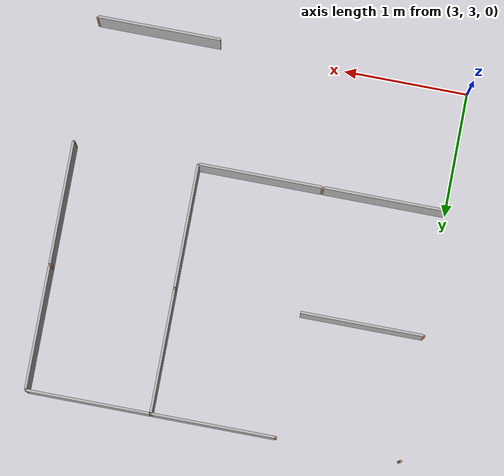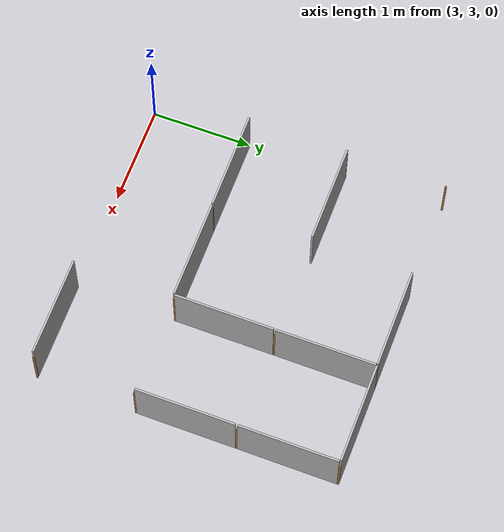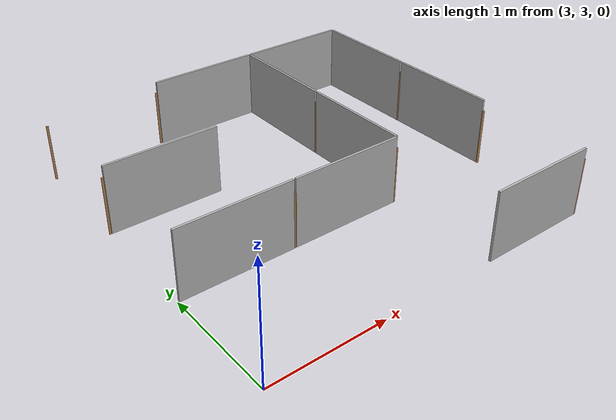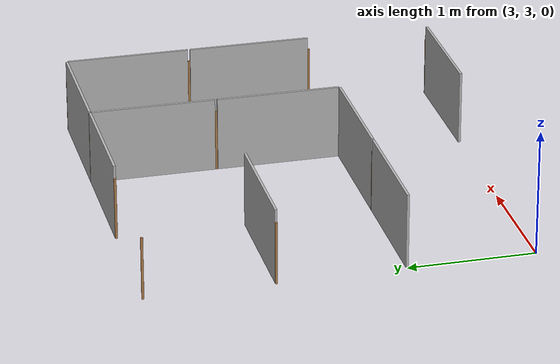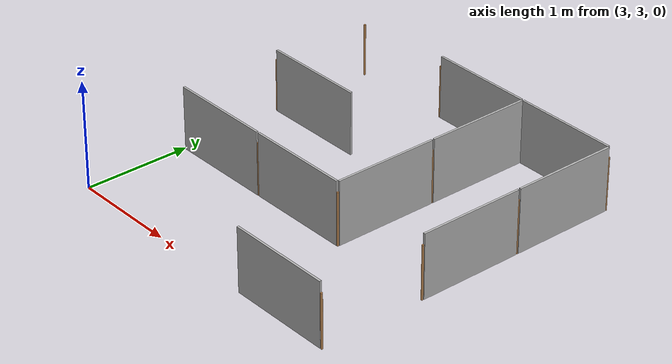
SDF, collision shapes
<sdf version="1.7">
 <model name="maze_3_6x6">
  <link name="plywood_panel_4_4_c::main">
   <pose>4 4 0 0 0 -1.5708</pose>
   <visual name="visual">
    <pose>0.01 -0.01 0 3.14159 -1.57059 3.14159</pose>
    <geometry><mesh><scale>1 1 1</scale><uri>model://plywood_panel/meshes/plywood.dae</uri></mesh></geometry>
    <material><shader type="pixel"/></material>
   </visual>
   <collision name="collision">
    <pose>0 -0.5 0.3 -1.571 -0 -1.571</pose>
    <geometry><box><size>0.98 0.6 0.02</size></box></geometry>
    <surface>
     <friction>
      <ode><mu>1</mu><mu2>1</mu2><fdir1>0 0 0</fdir1><slip1>0</slip1><slip2>0</slip2></ode>
      <torsional>
       <coefficient>1</coefficient>
       <patch_radius>0</patch_radius>
       <surface_radius>0</surface_radius>
       <use_patch_radius>1</use_patch_radius>
       <ode><slip>0</slip></ode>
      </torsional>
     </friction>
     <bounce><restitution_coefficient>0</restitution_coefficient><threshold>1e+06</threshold></bounce>
     <contact>
      <collide_without_contact>0</collide_without_contact>
      <collide_without_contact_bitmask>1</collide_without_contact_bitmask>
      <collide_bitmask>1</collide_bitmask>
      <ode>
       <soft_cfm>0</soft_cfm>
       <soft_erp>0.2</soft_erp>
       <kp>1e+13</kp>
       <kd>1</kd>
       <max_vel>0.01</max_vel>
       <min_depth>0</min_depth>
      </ode>
      <bullet>
       <split_impulse>1</split_impulse>
       <split_impulse_penetration_threshold>-0.01</split_impulse_penetration_threshold>
       <soft_cfm>0</soft_cfm>
       <soft_erp>0.2</soft_erp>
       <kp>1e+13</kp>
       <kd>1</kd>
      </bullet>
     </contact>
    </surface>
   </collision>
  </link>
  <link name="plywood_panel_4_5_c::main">
   <pose>4 5 0 0 0 -1.5708</pose>
   <visual name="visual">
    <pose>0.01 -0.01 0 3.14159 -1.57059 3.14159</pose>
    <geometry><mesh><scale>1 1 1</scale><uri>model://plywood_panel/meshes/plywood.dae</uri></mesh></geometry>
    <material><shader type="pixel"/></material>
   </visual>
   <collision name="collision">
    <pose>0 -0.5 0.3 -1.571 -0 -1.571</pose>
    <geometry><box><size>0.98 0.6 0.02</size></box></geometry>
    <surface>
     <friction>
      <ode><mu>1</mu><mu2>1</mu2><fdir1>0 0 0</fdir1><slip1>0</slip1><slip2>0</slip2></ode>
      <torsional>
       <coefficient>1</coefficient>
       <patch_radius>0</patch_radius>
       <surface_radius>0</surface_radius>
       <use_patch_radius>1</use_patch_radius>
       <ode><slip>0</slip></ode>
      </torsional>
     </friction>
     <bounce><restitution_coefficient>0</restitution_coefficient><threshold>1e+06</threshold></bounce>
     <contact>
      <collide_without_contact>0</collide_without_contact>
      <collide_without_contact_bitmask>1</collide_without_contact_bitmask>
      <collide_bitmask>1</collide_bitmask>
      <ode>
       <soft_cfm>0</soft_cfm>
       <soft_erp>0.2</soft_erp>
       <kp>1e+13</kp>
       <kd>1</kd>
       <max_vel>0.01</max_vel>
       <min_depth>0</min_depth>
      </ode>
      <bullet>
       <split_impulse>1</split_impulse>
       <split_impulse_penetration_threshold>-0.01</split_impulse_penetration_threshold>
       <soft_cfm>0</soft_cfm>
       <soft_erp>0.2</soft_erp>
       <kp>1e+13</kp>
       <kd>1</kd>
      </bullet>
     </contact>
    </surface>
   </collision>
  </link>
  <link name="plywood_panel_4_6_b::main">
   <pose>4 6 0 0 -0 1.571</pose>
   <visual name="visual">
    <pose>0.01 -0.01 0 3.14159 -1.57059 3.14159</pose>
    <geometry><mesh><scale>1 1 1</scale><uri>model://plywood_panel/meshes/plywood.dae</uri></mesh></geometry>
    <material><shader type="pixel"/></material>
   </visual>
   <collision name="collision">
    <pose>0 -0.5 0.3 -1.571 -0 -1.571</pose>
    <geometry><box><size>0.98 0.6 0.02</size></box></geometry>
    <surface>
     <friction>
      <ode><mu>1</mu><mu2>1</mu2><fdir1>0 0 0</fdir1><slip1>0</slip1><slip2>0</slip2></ode>
      <torsional>
       <coefficient>1</coefficient>
       <patch_radius>0</patch_radius>
       <surface_radius>0</surface_radius>
       <use_patch_radius>1</use_patch_radius>
       <ode><slip>0</slip></ode>
      </torsional>
     </friction>
     <bounce><restitution_coefficient>0</restitution_coefficient><threshold>1e+06</threshold></bounce>
     <contact>
      <collide_without_contact>0</collide_without_contact>
      <collide_without_contact_bitmask>1</collide_without_contact_bitmask>
      <collide_bitmask>1</collide_bitmask>
      <ode>
       <soft_cfm>0</soft_cfm>
       <soft_erp>0.2</soft_erp>
       <kp>1e+13</kp>
       <kd>1</kd>
       <max_vel>0.01</max_vel>
       <min_depth>0</min_depth>
      </ode>
      <bullet>
       <split_impulse>1</split_impulse>
       <split_impulse_penetration_threshold>-0.01</split_impulse_penetration_threshold>
       <soft_cfm>0</soft_cfm>
       <soft_erp>0.2</soft_erp>
       <kp>1e+13</kp>
       <kd>1</kd>
      </bullet>
     </contact>
    </surface>
   </collision>
  </link>
  <link name="plywood_panel_5_4_c::main">
   <pose>5 4 0 0 0 -1.5708</pose>
   <visual name="visual">
    <pose>0.01 -0.01 0 3.14159 -1.57059 3.14159</pose>
    <geometry><mesh><scale>1 1 1</scale><uri>model://plywood_panel/meshes/plywood.dae</uri></mesh></geometry>
    <material><shader type="pixel"/></material>
   </visual>
   <collision name="collision">
    <pose>0 -0.5 0.3 -1.571 -0 -1.571</pose>
    <geometry><box><size>0.98 0.6 0.02</size></box></geometry>
    <surface>
     <friction>
      <ode><mu>1</mu><mu2>1</mu2><fdir1>0 0 0</fdir1><slip1>0</slip1><slip2>0</slip2></ode>
      <torsional>
       <coefficient>1</coefficient>
       <patch_radius>0</patch_radius>
       <surface_radius>0</surface_radius>
       <use_patch_radius>1</use_patch_radius>
       <ode><slip>0</slip></ode>
      </torsional>
     </friction>
     <bounce><restitution_coefficient>0</restitution_coefficient><threshold>1e+06</threshold></bounce>
     <contact>
      <collide_without_contact>0</collide_without_contact>
      <collide_without_contact_bitmask>1</collide_without_contact_bitmask>
      <collide_bitmask>1</collide_bitmask>
      <ode>
       <soft_cfm>0</soft_cfm>
       <soft_erp>0.2</soft_erp>
       <kp>1e+13</kp>
       <kd>1</kd>
       <max_vel>0.01</max_vel>
       <min_depth>0</min_depth>
      </ode>
      <bullet>
       <split_impulse>1</split_impulse>
       <split_impulse_penetration_threshold>-0.01</split_impulse_penetration_threshold>
       <soft_cfm>0</soft_cfm>
       <soft_erp>0.2</soft_erp>
       <kp>1e+13</kp>
       <kd>1</kd>
      </bullet>
     </contact>
    </surface>
   </collision>
  </link>
  <link name="plywood_panel_5_5_a::main">
   <pose>5 5 0 0 -0 0</pose>
   <visual name="visual">
    <pose>0.01 -0.01 0 3.14159 -1.57059 3.14159</pose>
    <geometry><mesh><scale>1 1 1</scale><uri>model://plywood_panel/meshes/plywood.dae</uri></mesh></geometry>
    <material><shader type="pixel"/></material>
   </visual>
   <collision name="collision">
    <pose>0 -0.5 0.3 -1.571 -0 -1.571</pose>
    <geometry><box><size>0.98 0.6 0.02</size></box></geometry>
    <surface>
     <friction>
      <ode><mu>1</mu><mu2>1</mu2><fdir1>0 0 0</fdir1><slip1>0</slip1><slip2>0</slip2></ode>
      <torsional>
       <coefficient>1</coefficient>
       <patch_radius>0</patch_radius>
       <surface_radius>0</surface_radius>
       <use_patch_radius>1</use_patch_radius>
       <ode><slip>0</slip></ode>
      </torsional>
     </friction>
     <bounce><restitution_coefficient>0</restitution_coefficient><threshold>1e+06</threshold></bounce>
     <contact>
      <collide_without_contact>0</collide_without_contact>
      <collide_without_contact_bitmask>1</collide_without_contact_bitmask>
      <collide_bitmask>1</collide_bitmask>
      <ode>
       <soft_cfm>0</soft_cfm>
       <soft_erp>0.2</soft_erp>
       <kp>1e+13</kp>
       <kd>1</kd>
       <max_vel>0.01</max_vel>
       <min_depth>0</min_depth>
      </ode>
      <bullet>
       <split_impulse>1</split_impulse>
       <split_impulse_penetration_threshold>-0.01</split_impulse_penetration_threshold>
       <soft_cfm>0</soft_cfm>
       <soft_erp>0.2</soft_erp>
       <kp>1e+13</kp>
       <kd>1</kd>
      </bullet>
     </contact>
    </surface>
   </collision>
  </link>
  <link name="plywood_panel_5_6_a::main">
   <pose>5 6 0 0 -0 0</pose>
   <visual name="visual">
    <pose>0.01 -0.01 0 3.14159 -1.57059 3.14159</pose>
    <geometry><mesh><scale>1 1 1</scale><uri>model://plywood_panel/meshes/plywood.dae</uri></mesh></geometry>
    <material><shader type="pixel"/></material>
   </visual>
   <collision name="collision">
    <pose>0 -0.5 0.3 -1.571 -0 -1.571</pose>
    <geometry><box><size>0.98 0.6 0.02</size></box></geometry>
    <surface>
     <friction>
      <ode><mu>1</mu><mu2>1</mu2><fdir1>0 0 0</fdir1><slip1>0</slip1><slip2>0</slip2></ode>
      <torsional>
       <coefficient>1</coefficient>
       <patch_radius>0</patch_radius>
       <surface_radius>0</surface_radius>
       <use_patch_radius>1</use_patch_radius>
       <ode><slip>0</slip></ode>
      </torsional>
     </friction>
     <bounce><restitution_coefficient>0</restitution_coefficient><threshold>1e+06</threshold></bounce>
     <contact>
      <collide_without_contact>0</collide_without_contact>
      <collide_without_contact_bitmask>1</collide_without_contact_bitmask>
      <collide_bitmask>1</collide_bitmask>
      <ode>
       <soft_cfm>0</soft_cfm>
       <soft_erp>0.2</soft_erp>
       <kp>1e+13</kp>
       <kd>1</kd>
       <max_vel>0.01</max_vel>
       <min_depth>0</min_depth>
      </ode>
      <bullet>
       <split_impulse>1</split_impulse>
       <split_impulse_penetration_threshold>-0.01</split_impulse_penetration_threshold>
       <soft_cfm>0</soft_cfm>
       <soft_erp>0.2</soft_erp>
       <kp>1e+13</kp>
       <kd>1</kd>
      </bullet>
     </contact>
    </surface>
   </collision>
  </link>
  <link name="plywood_panel_5_6_b::main">
   <pose>5 6 0 0 -0 1.571</pose>
   <visual name="visual">
    <pose>0.01 -0.01 0 3.14159 -1.57059 3.14159</pose>
    <geometry><mesh><scale>1 1 1</scale><uri>model://plywood_panel/meshes/plywood.dae</uri></mesh></geometry>
    <material><shader type="pixel"/></material>
   </visual>
   <collision name="collision">
    <pose>0 -0.5 0.3 -1.571 -0 -1.571</pose>
    <geometry><box><size>0.98 0.6 0.02</size></box></geometry>
    <surface>
     <friction>
      <ode><mu>1</mu><mu2>1</mu2><fdir1>0 0 0</fdir1><slip1>0</slip1><slip2>0</slip2></ode>
      <torsional>
       <coefficient>1</coefficient>
       <patch_radius>0</patch_radius>
       <surface_radius>0</surface_radius>
       <use_patch_radius>1</use_patch_radius>
       <ode><slip>0</slip></ode>
      </torsional>
     </friction>
     <bounce><restitution_coefficient>0</restitution_coefficient><threshold>1e+06</threshold></bounce>
     <contact>
      <collide_without_contact>0</collide_without_contact>
      <collide_without_contact_bitmask>1</collide_without_contact_bitmask>
      <collide_bitmask>1</collide_bitmask>
      <ode>
       <soft_cfm>0</soft_cfm>
       <soft_erp>0.2</soft_erp>
       <kp>1e+13</kp>
       <kd>1</kd>
       <max_vel>0.01</max_vel>
       <min_depth>0</min_depth>
      </ode>
      <bullet>
       <split_impulse>1</split_impulse>
       <split_impulse_penetration_threshold>-0.01</split_impulse_penetration_threshold>
       <soft_cfm>0</soft_cfm>
       <soft_erp>0.2</soft_erp>
       <kp>1e+13</kp>
       <kd>1</kd>
      </bullet>
     </contact>
    </surface>
   </collision>
  </link>
  <link name="plywood_panel_6_3_c::main">
   <pose>6 3 0 0 0 -1.5708</pose>
   <visual name="visual">
    <pose>0.01 -0.01 0 3.14159 -1.57059 3.14159</pose>
    <geometry><mesh><scale>1 1 1</scale><uri>model://plywood_panel/meshes/plywood.dae</uri></mesh></geometry>
    <material><shader type="pixel"/></material>
   </visual>
   <collision name="collision">
    <pose>0 -0.5 0.3 -1.571 -0 -1.571</pose>
    <geometry><box><size>0.98 0.6 0.02</size></box></geometry>
    <surface>
     <friction>
      <ode><mu>1</mu><mu2>1</mu2><fdir1>0 0 0</fdir1><slip1>0</slip1><slip2>0</slip2></ode>
      <torsional>
       <coefficient>1</coefficient>
       <patch_radius>0</patch_radius>
       <surface_radius>0</surface_radius>
       <use_patch_radius>1</use_patch_radius>
       <ode><slip>0</slip></ode>
      </torsional>
     </friction>
     <bounce><restitution_coefficient>0</restitution_coefficient><threshold>1e+06</threshold></bounce>
     <contact>
      <collide_without_contact>0</collide_without_contact>
      <collide_without_contact_bitmask>1</collide_without_contact_bitmask>
      <collide_bitmask>1</collide_bitmask>
      <ode>
       <soft_cfm>0</soft_cfm>
       <soft_erp>0.2</soft_erp>
       <kp>1e+13</kp>
       <kd>1</kd>
       <max_vel>0.01</max_vel>
       <min_depth>0</min_depth>
      </ode>
      <bullet>
       <split_impulse>1</split_impulse>
       <split_impulse_penetration_threshold>-0.01</split_impulse_penetration_threshold>
       <soft_cfm>0</soft_cfm>
       <soft_erp>0.2</soft_erp>
       <kp>1e+13</kp>
       <kd>1</kd>
      </bullet>
     </contact>
    </surface>
   </collision>
  </link>
  <link name="plywood_panel_6_4_a::main">
   <pose>6 4 0 0 -0 3.14159</pose>
   <visual name="visual">
    <pose>0.01 -0.01 0 3.14159 -1.57059 3.14159</pose>
    <geometry><mesh><scale>1 1 1</scale><uri>model://plywood_panel/meshes/plywood.dae</uri></mesh></geometry>
    <material><shader type="pixel"/></material>
   </visual>
   <collision name="collision">
    <pose>0 -0.5 0.3 -1.571 -0 -1.571</pose>
    <geometry><box><size>0.98 0.6 0.02</size></box></geometry>
    <surface>
     <friction>
      <ode><mu>1</mu><mu2>1</mu2><fdir1>0 0 0</fdir1><slip1>0</slip1><slip2>0</slip2></ode>
      <torsional>
       <coefficient>1</coefficient>
       <patch_radius>0</patch_radius>
       <surface_radius>0</surface_radius>
       <use_patch_radius>1</use_patch_radius>
       <ode><slip>0</slip></ode>
      </torsional>
     </friction>
     <bounce><restitution_coefficient>0</restitution_coefficient><threshold>1e+06</threshold></bounce>
     <contact>
      <collide_without_contact>0</collide_without_contact>
      <collide_without_contact_bitmask>1</collide_without_contact_bitmask>
      <collide_bitmask>1</collide_bitmask>
      <ode>
       <soft_cfm>0</soft_cfm>
       <soft_erp>0.2</soft_erp>
       <kp>1e+13</kp>
       <kd>1</kd>
       <max_vel>0.01</max_vel>
       <min_depth>0</min_depth>
      </ode>
      <bullet>
       <split_impulse>1</split_impulse>
       <split_impulse_penetration_threshold>-0.01</split_impulse_penetration_threshold>
       <soft_cfm>0</soft_cfm>
       <soft_erp>0.2</soft_erp>
       <kp>1e+13</kp>
       <kd>1</kd>
      </bullet>
     </contact>
    </surface>
   </collision>
  </link>
  <link name="plywood_panel_6_5_a::main">
   <pose>6 5 0 0 -0 3.14159</pose>
   <visual name="visual">
    <pose>0.01 -0.01 0 3.14159 -1.57059 3.14159</pose>
    <geometry><mesh><scale>1 1 1</scale><uri>model://plywood_panel/meshes/plywood.dae</uri></mesh></geometry>
    <material><shader type="pixel"/></material>
   </visual>
   <collision name="collision">
    <pose>0 -0.5 0.3 -1.571 -0 -1.571</pose>
    <geometry><box><size>0.98 0.6 0.02</size></box></geometry>
    <surface>
     <friction>
      <ode><mu>1</mu><mu2>1</mu2><fdir1>0 0 0</fdir1><slip1>0</slip1><slip2>0</slip2></ode>
      <torsional>
       <coefficient>1</coefficient>
       <patch_radius>0</patch_radius>
       <surface_radius>0</surface_radius>
       <use_patch_radius>1</use_patch_radius>
       <ode><slip>0</slip></ode>
      </torsional>
     </friction>
     <bounce><restitution_coefficient>0</restitution_coefficient><threshold>1e+06</threshold></bounce>
     <contact>
      <collide_without_contact>0</collide_without_contact>
      <collide_without_contact_bitmask>1</collide_without_contact_bitmask>
      <collide_bitmask>1</collide_bitmask>
      <ode>
       <soft_cfm>0</soft_cfm>
       <soft_erp>0.2</soft_erp>
       <kp>1e+13</kp>
       <kd>1</kd>
       <max_vel>0.01</max_vel>
       <min_depth>0</min_depth>
      </ode>
      <bullet>
       <split_impulse>1</split_impulse>
       <split_impulse_penetration_threshold>-0.01</split_impulse_penetration_threshold>
       <soft_cfm>0</soft_cfm>
       <soft_erp>0.2</soft_erp>
       <kp>1e+13</kp>
       <kd>1</kd>
      </bullet>
     </contact>
    </surface>
   </collision>
  </link>
  <link name="wooden_joint_3_5::link_0">
   <pose>3 5 0.25 0 -0 0</pose>
   <inertial>
    <mass>0.00215981</mass>
    <inertia>
     <ixx>0.00018028</ixx>
     <ixy>0</ixy>
     <ixz>0</ixz>
     <iyy>0.00018028</iyy>
     <iyz>0</iyz>
     <izz>5.8e-07</izz>
    </inertia>
   </inertial>
   <visual name="visual">
    <geometry><cylinder><radius>0.01</radius><length>0.5</length></cylinder></geometry>
    <material>
     <lighting>1</lighting>
     <script><uri>file://media/materials/scripts/gazebo.material</uri><name>Gazebo/Wood</name></script>
     <shader type="pixel"><normal_map>__default__</normal_map></shader>
     <ambient>0.3 0.3 0.3 1</ambient>
     <diffuse>0.7 0.7 0.7 1</diffuse>
     <specular>0.01 0.01 0.01 1</specular>
     <emissive>0 0 0 1</emissive>
    </material>
   </visual>
   <collision name="collision">
    <geometry><cylinder><radius>0.01</radius><length>0.5</length></cylinder></geometry>
    <surface>
     <friction>
      <ode><mu>1</mu><mu2>1</mu2><fdir1>0 0 0</fdir1><slip1>0</slip1><slip2>0</slip2></ode>
      <torsional>
       <coefficient>1</coefficient>
       <patch_radius>0</patch_radius>
       <surface_radius>0</surface_radius>
       <use_patch_radius>1</use_patch_radius>
       <ode><slip>0</slip></ode>
      </torsional>
     </friction>
     <bounce><restitution_coefficient>0</restitution_coefficient><threshold>1e+06</threshold></bounce>
     <contact>
      <collide_without_contact>0</collide_without_contact>
      <collide_without_contact_bitmask>1</collide_without_contact_bitmask>
      <collide_bitmask>1</collide_bitmask>
      <ode>
       <soft_cfm>0</soft_cfm>
       <soft_erp>0.2</soft_erp>
       <kp>1e+13</kp>
       <kd>1</kd>
       <max_vel>0.01</max_vel>
       <min_depth>0</min_depth>
      </ode>
      <bullet>
       <split_impulse>1</split_impulse>
       <split_impulse_penetration_threshold>-0.01</split_impulse_penetration_threshold>
       <soft_cfm>0</soft_cfm>
       <soft_erp>0.2</soft_erp>
       <kp>1e+13</kp>
       <kd>1</kd>
      </bullet>
     </contact>
    </surface>
   </collision>
  </link>
  <link name="wooden_joint_3_6_b::link_0">
   <pose>3 6 0.25 0 -0 0</pose>
   <inertial>
    <mass>0.00215981</mass>
    <inertia>
     <ixx>0.00018028</ixx>
     <ixy>0</ixy>
     <ixz>0</ixz>
     <iyy>0.00018028</iyy>
     <iyz>0</iyz>
     <izz>5.8e-07</izz>
    </inertia>
   </inertial>
   <visual name="visual">
    <geometry><cylinder><radius>0.01</radius><length>0.5</length></cylinder></geometry>
    <material>
     <lighting>1</lighting>
     <script><uri>file://media/materials/scripts/gazebo.material</uri><name>Gazebo/Wood</name></script>
     <shader type="pixel"><normal_map>__default__</normal_map></shader>
     <ambient>0.3 0.3 0.3 1</ambient>
     <diffuse>0.7 0.7 0.7 1</diffuse>
     <specular>0.01 0.01 0.01 1</specular>
     <emissive>0 0 0 1</emissive>
    </material>
   </visual>
   <collision name="collision">
    <geometry><cylinder><radius>0.01</radius><length>0.5</length></cylinder></geometry>
    <surface>
     <friction>
      <ode><mu>1</mu><mu2>1</mu2><fdir1>0 0 0</fdir1><slip1>0</slip1><slip2>0</slip2></ode>
      <torsional>
       <coefficient>1</coefficient>
       <patch_radius>0</patch_radius>
       <surface_radius>0</surface_radius>
       <use_patch_radius>1</use_patch_radius>
       <ode><slip>0</slip></ode>
      </torsional>
     </friction>
     <bounce><restitution_coefficient>0</restitution_coefficient><threshold>1e+06</threshold></bounce>
     <contact>
      <collide_without_contact>0</collide_without_contact>
      <collide_without_contact_bitmask>1</collide_without_contact_bitmask>
      <collide_bitmask>1</collide_bitmask>
      <ode>
       <soft_cfm>0</soft_cfm>
       <soft_erp>0.2</soft_erp>
       <kp>1e+13</kp>
       <kd>1</kd>
       <max_vel>0.01</max_vel>
       <min_depth>0</min_depth>
      </ode>
      <bullet>
       <split_impulse>1</split_impulse>
       <split_impulse_penetration_threshold>-0.01</split_impulse_penetration_threshold>
       <soft_cfm>0</soft_cfm>
       <soft_erp>0.2</soft_erp>
       <kp>1e+13</kp>
       <kd>1</kd>
      </bullet>
     </contact>
    </surface>
   </collision>
  </link>
  <link name="wooden_joint_4_4::link_0">
   <pose>4 4 0.25 0 -0 0</pose>
   <inertial>
    <mass>0.00215981</mass>
    <inertia>
     <ixx>0.00018028</ixx>
     <ixy>0</ixy>
     <ixz>0</ixz>
     <iyy>0.00018028</iyy>
     <iyz>0</iyz>
     <izz>5.8e-07</izz>
    </inertia>
   </inertial>
   <visual name="visual">
    <geometry><cylinder><radius>0.01</radius><length>0.5</length></cylinder></geometry>
    <material>
     <lighting>1</lighting>
     <script><uri>file://media/materials/scripts/gazebo.material</uri><name>Gazebo/Wood</name></script>
     <shader type="pixel"><normal_map>__default__</normal_map></shader>
     <ambient>0.3 0.3 0.3 1</ambient>
     <diffuse>0.7 0.7 0.7 1</diffuse>
     <specular>0.01 0.01 0.01 1</specular>
     <emissive>0 0 0 1</emissive>
    </material>
   </visual>
   <collision name="collision">
    <geometry><cylinder><radius>0.01</radius><length>0.5</length></cylinder></geometry>
    <surface>
     <friction>
      <ode><mu>1</mu><mu2>1</mu2><fdir1>0 0 0</fdir1><slip1>0</slip1><slip2>0</slip2></ode>
      <torsional>
       <coefficient>1</coefficient>
       <patch_radius>0</patch_radius>
       <surface_radius>0</surface_radius>
       <use_patch_radius>1</use_patch_radius>
       <ode><slip>0</slip></ode>
      </torsional>
     </friction>
     <bounce><restitution_coefficient>0</restitution_coefficient><threshold>1e+06</threshold></bounce>
     <contact>
      <collide_without_contact>0</collide_without_contact>
      <collide_without_contact_bitmask>1</collide_without_contact_bitmask>
      <collide_bitmask>1</collide_bitmask>
      <ode>
       <soft_cfm>0</soft_cfm>
       <soft_erp>0.2</soft_erp>
       <kp>1e+13</kp>
       <kd>1</kd>
       <max_vel>0.01</max_vel>
       <min_depth>0</min_depth>
      </ode>
      <bullet>
       <split_impulse>1</split_impulse>
       <split_impulse_penetration_threshold>-0.01</split_impulse_penetration_threshold>
       <soft_cfm>0</soft_cfm>
       <soft_erp>0.2</soft_erp>
       <kp>1e+13</kp>
       <kd>1</kd>
      </bullet>
     </contact>
    </surface>
   </collision>
  </link>
  <link name="wooden_joint_4_6_b::link_0">
   <pose>4 6 0.25 0 -0 0</pose>
   <inertial>
    <mass>0.00215981</mass>
    <inertia>
     <ixx>0.00018028</ixx>
     <ixy>0</ixy>
     <ixz>0</ixz>
     <iyy>0.00018028</iyy>
     <iyz>0</iyz>
     <izz>5.8e-07</izz>
    </inertia>
   </inertial>
   <visual name="visual">
    <geometry><cylinder><radius>0.01</radius><length>0.5</length></cylinder></geometry>
    <material>
     <lighting>1</lighting>
     <script><uri>file://media/materials/scripts/gazebo.material</uri><name>Gazebo/Wood</name></script>
     <shader type="pixel"><normal_map>__default__</normal_map></shader>
     <ambient>0.3 0.3 0.3 1</ambient>
     <diffuse>0.7 0.7 0.7 1</diffuse>
     <specular>0.01 0.01 0.01 1</specular>
     <emissive>0 0 0 1</emissive>
    </material>
   </visual>
   <collision name="collision">
    <geometry><cylinder><radius>0.01</radius><length>0.5</length></cylinder></geometry>
    <surface>
     <friction>
      <ode><mu>1</mu><mu2>1</mu2><fdir1>0 0 0</fdir1><slip1>0</slip1><slip2>0</slip2></ode>
      <torsional>
       <coefficient>1</coefficient>
       <patch_radius>0</patch_radius>
       <surface_radius>0</surface_radius>
       <use_patch_radius>1</use_patch_radius>
       <ode><slip>0</slip></ode>
      </torsional>
     </friction>
     <bounce><restitution_coefficient>0</restitution_coefficient><threshold>1e+06</threshold></bounce>
     <contact>
      <collide_without_contact>0</collide_without_contact>
      <collide_without_contact_bitmask>1</collide_without_contact_bitmask>
      <collide_bitmask>1</collide_bitmask>
      <ode>
       <soft_cfm>0</soft_cfm>
       <soft_erp>0.2</soft_erp>
       <kp>1e+13</kp>
       <kd>1</kd>
       <max_vel>0.01</max_vel>
       <min_depth>0</min_depth>
      </ode>
      <bullet>
       <split_impulse>1</split_impulse>
       <split_impulse_penetration_threshold>-0.01</split_impulse_penetration_threshold>
       <soft_cfm>0</soft_cfm>
       <soft_erp>0.2</soft_erp>
       <kp>1e+13</kp>
       <kd>1</kd>
      </bullet>
     </contact>
    </surface>
   </collision>
  </link>
  <link name="wooden_joint_5_4::link_0">
   <pose>5 4 0.25 0 -0 0</pose>
   <inertial>
    <mass>0.00215981</mass>
    <inertia>
     <ixx>0.00018028</ixx>
     <ixy>0</ixy>
     <ixz>0</ixz>
     <iyy>0.00018028</iyy>
     <iyz>0</iyz>
     <izz>5.8e-07</izz>
    </inertia>
   </inertial>
   <visual name="visual">
    <geometry><cylinder><radius>0.01</radius><length>0.5</length></cylinder></geometry>
    <material>
     <lighting>1</lighting>
     <script><uri>file://media/materials/scripts/gazebo.material</uri><name>Gazebo/Wood</name></script>
     <shader type="pixel"><normal_map>__default__</normal_map></shader>
     <ambient>0.3 0.3 0.3 1</ambient>
     <diffuse>0.7 0.7 0.7 1</diffuse>
     <specular>0.01 0.01 0.01 1</specular>
     <emissive>0 0 0 1</emissive>
    </material>
   </visual>
   <collision name="collision">
    <geometry><cylinder><radius>0.01</radius><length>0.5</length></cylinder></geometry>
    <surface>
     <friction>
      <ode><mu>1</mu><mu2>1</mu2><fdir1>0 0 0</fdir1><slip1>0</slip1><slip2>0</slip2></ode>
      <torsional>
       <coefficient>1</coefficient>
       <patch_radius>0</patch_radius>
       <surface_radius>0</surface_radius>
       <use_patch_radius>1</use_patch_radius>
       <ode><slip>0</slip></ode>
      </torsional>
     </friction>
     <bounce><restitution_coefficient>0</restitution_coefficient><threshold>1e+06</threshold></bounce>
     <contact>
      <collide_without_contact>0</collide_without_contact>
      <collide_without_contact_bitmask>1</collide_without_contact_bitmask>
      <collide_bitmask>1</collide_bitmask>
      <ode>
       <soft_cfm>0</soft_cfm>
       <soft_erp>0.2</soft_erp>
       <kp>1e+13</kp>
       <kd>1</kd>
       <max_vel>0.01</max_vel>
       <min_depth>0</min_depth>
      </ode>
      <bullet>
       <split_impulse>1</split_impulse>
       <split_impulse_penetration_threshold>-0.01</split_impulse_penetration_threshold>
       <soft_cfm>0</soft_cfm>
       <soft_erp>0.2</soft_erp>
       <kp>1e+13</kp>
       <kd>1</kd>
      </bullet>
     </contact>
    </surface>
   </collision>
  </link>
  <link name="wooden_joint_5_5::link_0">
   <pose>5 5 0.25 0 -0 0</pose>
   <inertial>
    <mass>0.00215981</mass>
    <inertia>
     <ixx>0.00018028</ixx>
     <ixy>0</ixy>
     <ixz>0</ixz>
     <iyy>0.00018028</iyy>
     <iyz>0</iyz>
     <izz>5.8e-07</izz>
    </inertia>
   </inertial>
   <visual name="visual">
    <geometry><cylinder><radius>0.01</radius><length>0.5</length></cylinder></geometry>
    <material>
     <lighting>1</lighting>
     <script><uri>file://media/materials/scripts/gazebo.material</uri><name>Gazebo/Wood</name></script>
     <shader type="pixel"><normal_map>__default__</normal_map></shader>
     <ambient>0.3 0.3 0.3 1</ambient>
     <diffuse>0.7 0.7 0.7 1</diffuse>
     <specular>0.01 0.01 0.01 1</specular>
     <emissive>0 0 0 1</emissive>
    </material>
   </visual>
   <collision name="collision">
    <geometry><cylinder><radius>0.01</radius><length>0.5</length></cylinder></geometry>
    <surface>
     <friction>
      <ode><mu>1</mu><mu2>1</mu2><fdir1>0 0 0</fdir1><slip1>0</slip1><slip2>0</slip2></ode>
      <torsional>
       <coefficient>1</coefficient>
       <patch_radius>0</patch_radius>
       <surface_radius>0</surface_radius>
       <use_patch_radius>1</use_patch_radius>
       <ode><slip>0</slip></ode>
      </torsional>
     </friction>
     <bounce><restitution_coefficient>0</restitution_coefficient><threshold>1e+06</threshold></bounce>
     <contact>
      <collide_without_contact>0</collide_without_contact>
      <collide_without_contact_bitmask>1</collide_without_contact_bitmask>
      <collide_bitmask>1</collide_bitmask>
      <ode>
       <soft_cfm>0</soft_cfm>
       <soft_erp>0.2</soft_erp>
       <kp>1e+13</kp>
       <kd>1</kd>
       <max_vel>0.01</max_vel>
       <min_depth>0</min_depth>
      </ode>
      <bullet>
       <split_impulse>1</split_impulse>
       <split_impulse_penetration_threshold>-0.01</split_impulse_penetration_threshold>
       <soft_cfm>0</soft_cfm>
       <soft_erp>0.2</soft_erp>
       <kp>1e+13</kp>
       <kd>1</kd>
      </bullet>
     </contact>
    </surface>
   </collision>
  </link>
  <link name="wooden_joint_5_6_b::link_0">
   <pose>5 6 0.25 0 -0 0</pose>
   <inertial>
    <mass>0.00215981</mass>
    <inertia>
     <ixx>0.00018028</ixx>
     <ixy>0</ixy>
     <ixz>0</ixz>
     <iyy>0.00018028</iyy>
     <iyz>0</iyz>
     <izz>5.8e-07</izz>
    </inertia>
   </inertial>
   <visual name="visual">
    <geometry><cylinder><radius>0.01</radius><length>0.5</length></cylinder></geometry>
    <material>
     <lighting>1</lighting>
     <script><uri>file://media/materials/scripts/gazebo.material</uri><name>Gazebo/Wood</name></script>
     <shader type="pixel"><normal_map>__default__</normal_map></shader>
     <ambient>0.3 0.3 0.3 1</ambient>
     <diffuse>0.7 0.7 0.7 1</diffuse>
     <specular>0.01 0.01 0.01 1</specular>
     <emissive>0 0 0 1</emissive>
    </material>
   </visual>
   <collision name="collision">
    <geometry><cylinder><radius>0.01</radius><length>0.5</length></cylinder></geometry>
    <surface>
     <friction>
      <ode><mu>1</mu><mu2>1</mu2><fdir1>0 0 0</fdir1><slip1>0</slip1><slip2>0</slip2></ode>
      <torsional>
       <coefficient>1</coefficient>
       <patch_radius>0</patch_radius>
       <surface_radius>0</surface_radius>
       <use_patch_radius>1</use_patch_radius>
       <ode><slip>0</slip></ode>
      </torsional>
     </friction>
     <bounce><restitution_coefficient>0</restitution_coefficient><threshold>1e+06</threshold></bounce>
     <contact>
      <collide_without_contact>0</collide_without_contact>
      <collide_without_contact_bitmask>1</collide_without_contact_bitmask>
      <collide_bitmask>1</collide_bitmask>
      <ode>
       <soft_cfm>0</soft_cfm>
       <soft_erp>0.2</soft_erp>
       <kp>1e+13</kp>
       <kd>1</kd>
       <max_vel>0.01</max_vel>
       <min_depth>0</min_depth>
      </ode>
      <bullet>
       <split_impulse>1</split_impulse>
       <split_impulse_penetration_threshold>-0.01</split_impulse_penetration_threshold>
       <soft_cfm>0</soft_cfm>
       <soft_erp>0.2</soft_erp>
       <kp>1e+13</kp>
       <kd>1</kd>
      </bullet>
     </contact>
    </surface>
   </collision>
  </link>
  <link name="wooden_joint_6_3_a::link_0">
   <pose>6 3 0.25 0 -0 0</pose>
   <inertial>
    <mass>0.00215981</mass>
    <inertia>
     <ixx>0.00018028</ixx>
     <ixy>0</ixy>
     <ixz>0</ixz>
     <iyy>0.00018028</iyy>
     <iyz>0</iyz>
     <izz>5.8e-07</izz>
    </inertia>
   </inertial>
   <visual name="visual">
    <geometry><cylinder><radius>0.01</radius><length>0.5</length></cylinder></geometry>
    <material>
     <lighting>1</lighting>
     <script><uri>file://media/materials/scripts/gazebo.material</uri><name>Gazebo/Wood</name></script>
     <shader type="pixel"><normal_map>__default__</normal_map></shader>
     <ambient>0.3 0.3 0.3 1</ambient>
     <diffuse>0.7 0.7 0.7 1</diffuse>
     <specular>0.01 0.01 0.01 1</specular>
     <emissive>0 0 0 1</emissive>
    </material>
   </visual>
   <collision name="collision">
    <geometry><cylinder><radius>0.01</radius><length>0.5</length></cylinder></geometry>
    <surface>
     <friction>
      <ode><mu>1</mu><mu2>1</mu2><fdir1>0 0 0</fdir1><slip1>0</slip1><slip2>0</slip2></ode>
      <torsional>
       <coefficient>1</coefficient>
       <patch_radius>0</patch_radius>
       <surface_radius>0</surface_radius>
       <use_patch_radius>1</use_patch_radius>
       <ode><slip>0</slip></ode>
      </torsional>
     </friction>
     <bounce><restitution_coefficient>0</restitution_coefficient><threshold>1e+06</threshold></bounce>
     <contact>
      <collide_without_contact>0</collide_without_contact>
      <collide_without_contact_bitmask>1</collide_without_contact_bitmask>
      <collide_bitmask>1</collide_bitmask>
      <ode>
       <soft_cfm>0</soft_cfm>
       <soft_erp>0.2</soft_erp>
       <kp>1e+13</kp>
       <kd>1</kd>
       <max_vel>0.01</max_vel>
       <min_depth>0</min_depth>
      </ode>
      <bullet>
       <split_impulse>1</split_impulse>
       <split_impulse_penetration_threshold>-0.01</split_impulse_penetration_threshold>
       <soft_cfm>0</soft_cfm>
       <soft_erp>0.2</soft_erp>
       <kp>1e+13</kp>
       <kd>1</kd>
      </bullet>
     </contact>
    </surface>
   </collision>
  </link>
  <link name="wooden_joint_6_4_a::link_0">
   <pose>6 4 0.25 0 -0 0</pose>
   <inertial>
    <mass>0.00215981</mass>
    <inertia>
     <ixx>0.00018028</ixx>
     <ixy>0</ixy>
     <ixz>0</ixz>
     <iyy>0.00018028</iyy>
     <iyz>0</iyz>
     <izz>5.8e-07</izz>
    </inertia>
   </inertial>
   <visual name="visual">
    <geometry><cylinder><radius>0.01</radius><length>0.5</length></cylinder></geometry>
    <material>
     <lighting>1</lighting>
     <script><uri>file://media/materials/scripts/gazebo.material</uri><name>Gazebo/Wood</name></script>
     <shader type="pixel"><normal_map>__default__</normal_map></shader>
     <ambient>0.3 0.3 0.3 1</ambient>
     <diffuse>0.7 0.7 0.7 1</diffuse>
     <specular>0.01 0.01 0.01 1</specular>
     <emissive>0 0 0 1</emissive>
    </material>
   </visual>
   <collision name="collision">
    <geometry><cylinder><radius>0.01</radius><length>0.5</length></cylinder></geometry>
    <surface>
     <friction>
      <ode><mu>1</mu><mu2>1</mu2><fdir1>0 0 0</fdir1><slip1>0</slip1><slip2>0</slip2></ode>
      <torsional>
       <coefficient>1</coefficient>
       <patch_radius>0</patch_radius>
       <surface_radius>0</surface_radius>
       <use_patch_radius>1</use_patch_radius>
       <ode><slip>0</slip></ode>
      </torsional>
     </friction>
     <bounce><restitution_coefficient>0</restitution_coefficient><threshold>1e+06</threshold></bounce>
     <contact>
      <collide_without_contact>0</collide_without_contact>
      <collide_without_contact_bitmask>1</collide_without_contact_bitmask>
      <collide_bitmask>1</collide_bitmask>
      <ode>
       <soft_cfm>0</soft_cfm>
       <soft_erp>0.2</soft_erp>
       <kp>1e+13</kp>
       <kd>1</kd>
       <max_vel>0.01</max_vel>
       <min_depth>0</min_depth>
      </ode>
      <bullet>
       <split_impulse>1</split_impulse>
       <split_impulse_penetration_threshold>-0.01</split_impulse_penetration_threshold>
       <soft_cfm>0</soft_cfm>
       <soft_erp>0.2</soft_erp>
       <kp>1e+13</kp>
       <kd>1</kd>
      </bullet>
     </contact>
    </surface>
   </collision>
  </link>
  <link name="wooden_joint_6_5_a::link_0">
   <pose>6 5 0.25 0 -0 0</pose>
   <inertial>
    <mass>0.00215981</mass>
    <inertia>
     <ixx>0.00018028</ixx>
     <ixy>0</ixy>
     <ixz>0</ixz>
     <iyy>0.00018028</iyy>
     <iyz>0</iyz>
     <izz>5.8e-07</izz>
    </inertia>
   </inertial>
   <visual name="visual">
    <geometry><cylinder><radius>0.01</radius><length>0.5</length></cylinder></geometry>
    <material>
     <lighting>1</lighting>
     <script><uri>file://media/materials/scripts/gazebo.material</uri><name>Gazebo/Wood</name></script>
     <shader type="pixel"><normal_map>__default__</normal_map></shader>
     <ambient>0.3 0.3 0.3 1</ambient>
     <diffuse>0.7 0.7 0.7 1</diffuse>
     <specular>0.01 0.01 0.01 1</specular>
     <emissive>0 0 0 1</emissive>
    </material>
   </visual>
   <collision name="collision">
    <geometry><cylinder><radius>0.01</radius><length>0.5</length></cylinder></geometry>
    <surface>
     <friction>
      <ode><mu>1</mu><mu2>1</mu2><fdir1>0 0 0</fdir1><slip1>0</slip1><slip2>0</slip2></ode>
      <torsional>
       <coefficient>1</coefficient>
       <patch_radius>0</patch_radius>
       <surface_radius>0</surface_radius>
       <use_patch_radius>1</use_patch_radius>
       <ode><slip>0</slip></ode>
      </torsional>
     </friction>
     <bounce><restitution_coefficient>0</restitution_coefficient><threshold>1e+06</threshold></bounce>
     <contact>
      <collide_without_contact>0</collide_without_contact>
      <collide_without_contact_bitmask>1</collide_without_contact_bitmask>
      <collide_bitmask>1</collide_bitmask>
      <ode>
       <soft_cfm>0</soft_cfm>
       <soft_erp>0.2</soft_erp>
       <kp>1e+13</kp>
       <kd>1</kd>
       <max_vel>0.01</max_vel>
       <min_depth>0</min_depth>
      </ode>
      <bullet>
       <split_impulse>1</split_impulse>
       <split_impulse_penetration_threshold>-0.01</split_impulse_penetration_threshold>
       <soft_cfm>0</soft_cfm>
       <soft_erp>0.2</soft_erp>
       <kp>1e+13</kp>
       <kd>1</kd>
      </bullet>
     </contact>
    </surface>
   </collision>
  </link>
  <link name="wooden_joint_6_6_a::link_0">
   <pose>6 6 0.25 0 -0 0</pose>
   <inertial>
    <mass>0.00215981</mass>
    <inertia>
     <ixx>0.00018028</ixx>
     <ixy>0</ixy>
     <ixz>0</ixz>
     <iyy>0.00018028</iyy>
     <iyz>0</iyz>
     <izz>5.8e-07</izz>
    </inertia>
   </inertial>
   <visual name="visual">
    <geometry><cylinder><radius>0.01</radius><length>0.5</length></cylinder></geometry>
    <material>
     <lighting>1</lighting>
     <script><uri>file://media/materials/scripts/gazebo.material</uri><name>Gazebo/Wood</name></script>
     <shader type="pixel"><normal_map>__default__</normal_map></shader>
     <ambient>0.3 0.3 0.3 1</ambient>
     <diffuse>0.7 0.7 0.7 1</diffuse>
     <specular>0.01 0.01 0.01 1</specular>
     <emissive>0 0 0 1</emissive>
    </material>
   </visual>
   <collision name="collision">
    <geometry><cylinder><radius>0.01</radius><length>0.5</length></cylinder></geometry>
    <surface>
     <friction>
      <ode><mu>1</mu><mu2>1</mu2><fdir1>0 0 0</fdir1><slip1>0</slip1><slip2>0</slip2></ode>
      <torsional>
       <coefficient>1</coefficient>
       <patch_radius>0</patch_radius>
       <surface_radius>0</surface_radius>
       <use_patch_radius>1</use_patch_radius>
       <ode><slip>0</slip></ode>
      </torsional>
     </friction>
     <bounce><restitution_coefficient>0</restitution_coefficient><threshold>1e+06</threshold></bounce>
     <contact>
      <collide_without_contact>0</collide_without_contact>
      <collide_without_contact_bitmask>1</collide_without_contact_bitmask>
      <collide_bitmask>1</collide_bitmask>
      <ode>
       <soft_cfm>0</soft_cfm>
       <soft_erp>0.2</soft_erp>
       <kp>1e+13</kp>
       <kd>1</kd>
       <max_vel>0.01</max_vel>
       <min_depth>0</min_depth>
      </ode>
      <bullet>
       <split_impulse>1</split_impulse>
       <split_impulse_penetration_threshold>-0.01</split_impulse_penetration_threshold>
       <soft_cfm>0</soft_cfm>
       <soft_erp>0.2</soft_erp>
       <kp>1e+13</kp>
       <kd>1</kd>
      </bullet>
     </contact>
    </surface>
   </collision>
  </link>
  <static>1</static>
 </model>
</sdf>
